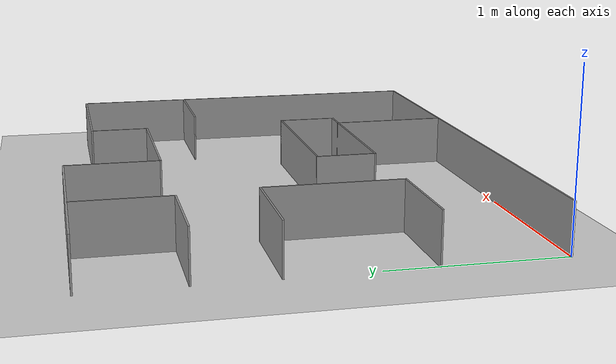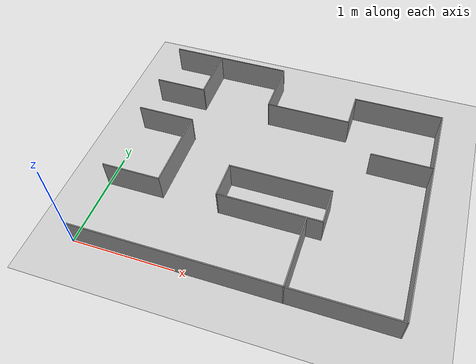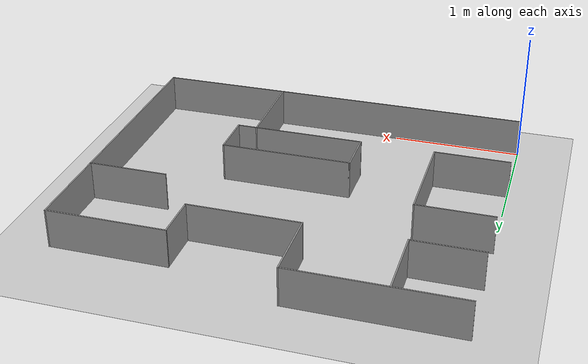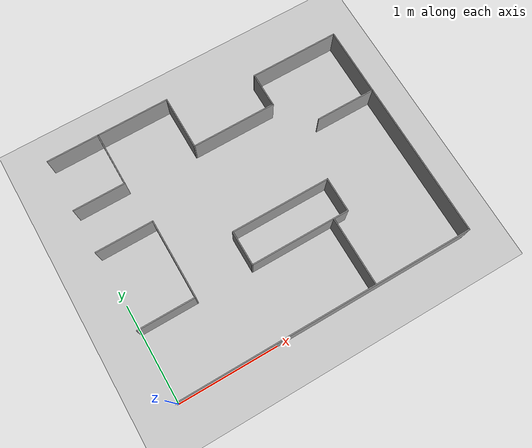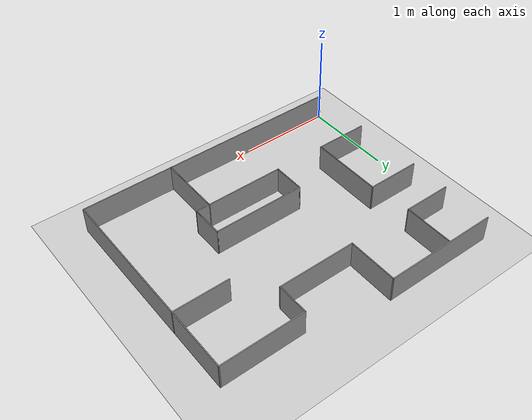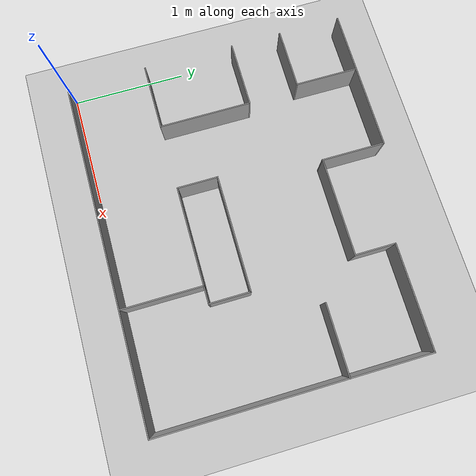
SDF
<sdf version="1.4">
  <world name="default">

    <scene>
      <ambient>0.4 0.4 0.4 1</ambient>
      <background>0.7 0.7 0.7 1</background>
      <shadows>true</shadows>
    </scene>

    <!-- A global light source -->
    <include>
      <uri>model://sun</uri>
    </include>

    <!-- A ground plane -->
    <include>
      <uri>model://ground_plane</uri>
    </include>

    <include>
      <uri>model://turtlebot3_maze4</uri>
    </include>

    <physics type="ode">
      <real_time_update_rate>1000.0</real_time_update_rate>
      <max_step_size>0.001</max_step_size>
      <real_time_factor>1</real_time_factor>
      <ode>
        <solver>
          <type>quick</type>
          <iters>150</iters>
          <precon_iters>0</precon_iters>
          <sor>1.400000</sor>
          <use_dynamic_moi_rescaling>1</use_dynamic_moi_rescaling>
        </solver>
        <constraints>
          <cfm>0.00001</cfm>
          <erp>0.2</erp>
          <contact_max_correcting_vel>2000.000000</contact_max_correcting_vel>
          <contact_surface_layer>0.01000</contact_surface_layer>
        </constraints>
      </ode>
    </physics>
  </world>

</sdf>

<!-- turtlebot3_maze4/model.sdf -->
<sdf version='1.7'>
  <model name='Maze4'>
    <pose>1.5 1.25 0 0 -0 0</pose>
    <link name='Wall_0'>
      <collision name='Wall_0_Collision'>
        <geometry>
          <box>
            <size>3.01 0.01 0.3</size>
          </box>
        </geometry>
        <pose>0 0 0.15 0 -0 0</pose>
      </collision>
      <visual name='Wall_0_Visual'>
        <pose>0 0 0.15 0 -0 0</pose>
        <geometry>
          <box>
            <size>3.01 0.01 0.3</size>
          </box>
        </geometry>
        <material>
          <script>
            <uri>file://media/materials/scripts/gazebo.material</uri>
            <name>Gazebo/Grey</name>
          </script>
          <ambient>1 1 1 1</ambient>
        </material>
        <meta>
          <layer>0</layer>
        </meta>
      </visual>
      <pose>-0 -1.25 0 0 -0 0</pose>
    </link>
    <link name='Wall_10'>
      <collision name='Wall_10_Collision'>
        <geometry>
          <box>
            <size>2.31 0.01 0.3</size>
          </box>
        </geometry>
        <pose>0 0 0.15 0 -0 0</pose>
      </collision>
      <visual name='Wall_10_Visual'>
        <pose>0 0 0.15 0 -0 0</pose>
        <geometry>
          <box>
            <size>2.31 0.01 0.3</size>
          </box>
        </geometry>
        <material>
          <script>
            <uri>file://media/materials/scripts/gazebo.material</uri>
            <name>Gazebo/Grey</name>
          </script>
          <ambient>1 1 1 1</ambient>
        </material>
        <meta>
          <layer>0</layer>
        </meta>
      </visual>
      <pose>1.5 -0.1 0 0 -0 1.5708</pose>
    </link>
    <link name='Wall_11'>
      <collision name='Wall_11_Collision'>
        <geometry>
          <box>
            <size>0.91 0.01 0.3</size>
          </box>
        </geometry>
        <pose>0 0 0.15 0 -0 0</pose>
      </collision>
      <visual name='Wall_11_Visual'>
        <pose>0 0 0.15 0 -0 0</pose>
        <geometry>
          <box>
            <size>0.91 0.01 0.3</size>
          </box>
        </geometry>
        <material>
          <script>
            <uri>file://media/materials/scripts/gazebo.material</uri>
            <name>Gazebo/Grey</name>
          </script>
          <ambient>1 1 1 1</ambient>
        </material>
        <meta>
          <layer>0</layer>
        </meta>
      </visual>
      <pose>1.05 1.05 0 0 -0 3.14159</pose>
    </link>
    <link name='Wall_13'>
      <collision name='Wall_13_Collision'>
        <geometry>
          <box>
            <size>0.61 0.01 0.3</size>
          </box>
        </geometry>
        <pose>0 0 0.15 0 -0 0</pose>
      </collision>
      <visual name='Wall_13_Visual'>
        <pose>0 0 0.15 0 -0 0</pose>
        <geometry>
          <box>
            <size>0.61 0.01 0.3</size>
          </box>
        </geometry>
        <material>
          <script>
            <uri>file://media/materials/scripts/gazebo.material</uri>
            <name>Gazebo/Grey</name>
          </script>
          <ambient>1 1 1 1</ambient>
        </material>
        <meta>
          <layer>0</layer>
        </meta>
      </visual>
      <pose>1.2 0.35 0 0 -0 3.14159</pose>
    </link>
    <link name='Wall_15'>
      <collision name='Wall_15_Collision'>
        <geometry>
          <box>
            <size>0.36 0.01 0.3</size>
          </box>
        </geometry>
        <pose>0 0 0.15 0 -0 0</pose>
      </collision>
      <visual name='Wall_15_Visual'>
        <pose>0 0 0.15 0 -0 0</pose>
        <geometry>
          <box>
            <size>0.36 0.01 0.3</size>
          </box>
        </geometry>
        <material>
          <script>
            <uri>file://media/materials/scripts/gazebo.material</uri>
            <name>Gazebo/Grey</name>
          </script>
          <ambient>1 1 1 1</ambient>
        </material>
        <meta>
          <layer>0</layer>
        </meta>
      </visual>
      <pose>0.6 0.875 0 0 -0 -1.5708</pose>
    </link>
    <link name='Wall_16'>
      <collision name='Wall_16_Collision'>
        <geometry>
          <box>
            <size>0.86 0.01 0.3</size>
          </box>
        </geometry>
        <pose>0 0 0.15 0 -0 0</pose>
      </collision>
      <visual name='Wall_16_Visual'>
        <pose>0 0 0.15 0 -0 0</pose>
        <geometry>
          <box>
            <size>0.86 0.01 0.3</size>
          </box>
        </geometry>
        <material>
          <script>
            <uri>file://media/materials/scripts/gazebo.material</uri>
            <name>Gazebo/Grey</name>
          </script>
          <ambient>1 1 1 1</ambient>
        </material>
        <meta>
          <layer>0</layer>
        </meta>
      </visual>
      <pose>0.175 0.7 0 0 -0 3.14159</pose>
    </link>
    <link name='Wall_17'>
      <collision name='Wall_17_Collision'>
        <geometry>
          <box>
            <size>0.56 0.01 0.3</size>
          </box>
        </geometry>
        <pose>0 0 0.15 0 -0 0</pose>
      </collision>
      <visual name='Wall_17_Visual'>
        <pose>0 0 0.15 0 -0 0</pose>
        <geometry>
          <box>
            <size>0.56 0.01 0.3</size>
          </box>
        </geometry>
        <material>
          <script>
            <uri>file://media/materials/scripts/gazebo.material</uri>
            <name>Gazebo/Grey</name>
          </script>
          <ambient>1 1 1 1</ambient>
        </material>
        <meta>
          <layer>0</layer>
        </meta>
      </visual>
      <pose>-0.25 0.975 0 0 -0 1.5708</pose>
    </link>
    <link name='Wall_18'>
      <collision name='Wall_18_Collision'>
        <geometry>
          <box>
            <size>1.26 0.01 0.3</size>
          </box>
        </geometry>
        <pose>0 0 0.15 0 -0 0</pose>
      </collision>
      <visual name='Wall_18_Visual'>
        <pose>0 0 0.15 0 -0 0</pose>
        <geometry>
          <box>
            <size>1.26 0.01 0.3</size>
          </box>
        </geometry>
        <material>
          <script>
            <uri>file://media/materials/scripts/gazebo.material</uri>
            <name>Gazebo/Grey</name>
          </script>
          <ambient>1 1 1 1</ambient>
        </material>
        <meta>
          <layer>0</layer>
        </meta>
      </visual>
      <pose>-0.875 1.25 0 0 -0 3.14159</pose>
    </link>
    <link name='Wall_2'>
      <collision name='Wall_2_Collision'>
        <geometry>
          <box>
            <size>0.71 0.01 0.3</size>
          </box>
        </geometry>
        <pose>0 0 0.15 0 -0 0</pose>
      </collision>
      <visual name='Wall_2_Visual'>
        <pose>0 0 0.15 0 -0 0</pose>
        <geometry>
          <box>
            <size>0.71 0.01 0.3</size>
          </box>
        </geometry>
        <material>
          <script>
            <uri>file://media/materials/scripts/gazebo.material</uri>
            <name>Gazebo/Grey</name>
          </script>
          <ambient>1 1 1 1</ambient>
        </material>
        <meta>
          <layer>0</layer>
        </meta>
      </visual>
      <pose>0.5 -0.9 0 0 -0 1.5708</pose>
    </link>
    <link name='Wall_20'>
      <collision name='Wall_20_Collision'>
        <geometry>
          <box>
            <size>0.56 0.01 0.3</size>
          </box>
        </geometry>
        <pose>0 0 0.15 0 -0 0</pose>
      </collision>
      <visual name='Wall_20_Visual'>
        <pose>0 0 0.15 0 -0 0</pose>
        <geometry>
          <box>
            <size>0.56 0.01 0.3</size>
          </box>
        </geometry>
        <material>
          <script>
            <uri>file://media/materials/scripts/gazebo.material</uri>
            <name>Gazebo/Grey</name>
          </script>
          <ambient>1 1 1 1</ambient>
        </material>
        <meta>
          <layer>0</layer>
        </meta>
      </visual>
      <pose>-0.98 0.975 0 0 -0 -1.5708</pose>
    </link>
    <link name='Wall_21'>
      <collision name='Wall_21_Collision'>
        <geometry>
          <box>
            <size>0.53 0.01 0.3</size>
          </box>
        </geometry>
        <pose>0 0 0.15 0 -0 0</pose>
      </collision>
      <visual name='Wall_21_Visual'>
        <pose>0 0 0.15 0 -0 0</pose>
        <geometry>
          <box>
            <size>0.53 0.01 0.3</size>
          </box>
        </geometry>
        <material>
          <script>
            <uri>file://media/materials/scripts/gazebo.material</uri>
            <name>Gazebo/Grey</name>
          </script>
          <ambient>1 1 1 1</ambient>
        </material>
        <meta>
          <layer>0</layer>
        </meta>
      </visual>
      <pose>-1.24 0.7 0 0 -0 3.14159</pose>
    </link>
    <link name='Wall_23'>
      <collision name='Wall_23_Collision'>
        <geometry>
          <box>
            <size>0.585 0.01 0.3</size>
          </box>
        </geometry>
        <pose>0 0 0.15 0 -0 0</pose>
      </collision>
      <visual name='Wall_23_Visual'>
        <pose>0 0 0.15 0 -0 0</pose>
        <geometry>
          <box>
            <size>0.585 0.01 0.3</size>
          </box>
        </geometry>
        <material>
          <script>
            <uri>file://media/materials/scripts/gazebo.material</uri>
            <name>Gazebo/Grey</name>
          </script>
          <ambient>1 1 1 1</ambient>
        </material>
        <meta>
          <layer>0</layer>
        </meta>
      </visual>
      <pose>-1.2125 -0.55 0 0 -0 0</pose>
    </link>
    <link name='Wall_24'>
      <collision name='Wall_24_Collision'>
        <geometry>
          <box>
            <size>0.81 0.01 0.3</size>
          </box>
        </geometry>
        <pose>0 0 0.15 0 -0 0</pose>
      </collision>
      <visual name='Wall_24_Visual'>
        <pose>0 0 0.15 0 -0 0</pose>
        <geometry>
          <box>
            <size>0.81 0.01 0.3</size>
          </box>
        </geometry>
        <material>
          <script>
            <uri>file://media/materials/scripts/gazebo.material</uri>
            <name>Gazebo/Grey</name>
          </script>
          <ambient>1 1 1 1</ambient>
        </material>
        <meta>
          <layer>0</layer>
        </meta>
      </visual>
      <pose>-0.925 -0.15 0 0 -0 1.5708</pose>
    </link>
    <link name='Wall_25'>
      <collision name='Wall_25_Collision'>
        <geometry>
          <box>
            <size>0.585 0.01 0.3</size>
          </box>
        </geometry>
        <pose>0 0 0.15 0 -0 0</pose>
      </collision>
      <visual name='Wall_25_Visual'>
        <pose>0 0 0.15 0 -0 0</pose>
        <geometry>
          <box>
            <size>0.585 0.01 0.3</size>
          </box>
        </geometry>
        <material>
          <script>
            <uri>file://media/materials/scripts/gazebo.material</uri>
            <name>Gazebo/Grey</name>
          </script>
          <ambient>1 1 1 1</ambient>
        </material>
        <meta>
          <layer>0</layer>
        </meta>
      </visual>
      <pose>-1.2125 0.25 0 0 -0 3.14159</pose>
    </link>
    <link name='Wall_4'>
      <collision name='Wall_4_Collision'>
        <geometry>
          <box>
            <size>1.01 0.01 0.3</size>
          </box>
        </geometry>
        <pose>0 0 0.15 0 -0 0</pose>
      </collision>
      <visual name='Wall_4_Visual'>
        <pose>0 0 0.15 0 -0 0</pose>
        <geometry>
          <box>
            <size>1.01 0.01 0.3</size>
          </box>
        </geometry>
        <material>
          <script>
            <uri>file://media/materials/scripts/gazebo.material</uri>
            <name>Gazebo/Grey</name>
          </script>
          <ambient>1 1 1 1</ambient>
        </material>
        <meta>
          <layer>0</layer>
        </meta>
      </visual>
      <pose>0.15 -0.55 0 0 -0 3.14159</pose>
    </link>
    <link name='Wall_6'>
      <collision name='Wall_6_Collision'>
        <geometry>
          <box>
            <size>0.36 0.01 0.3</size>
          </box>
        </geometry>
        <pose>0 0 0.15 0 -0 0</pose>
      </collision>
      <visual name='Wall_6_Visual'>
        <pose>0 0 0.15 0 -0 0</pose>
        <geometry>
          <box>
            <size>0.36 0.01 0.3</size>
          </box>
        </geometry>
        <material>
          <script>
            <uri>file://media/materials/scripts/gazebo.material</uri>
            <name>Gazebo/Grey</name>
          </script>
          <ambient>1 1 1 1</ambient>
        </material>
        <meta>
          <layer>0</layer>
        </meta>
      </visual>
      <pose>-0.35 -0.375 0 0 -0 1.5708</pose>
    </link>
    <link name='Wall_7'>
      <collision name='Wall_7_Collision'>
        <geometry>
          <box>
            <size>1.01 0.01 0.3</size>
          </box>
        </geometry>
        <pose>0 0 0.15 0 -0 0</pose>
      </collision>
      <visual name='Wall_7_Visual'>
        <pose>0 0 0.15 0 -0 0</pose>
        <geometry>
          <box>
            <size>1.01 0.01 0.3</size>
          </box>
        </geometry>
        <material>
          <script>
            <uri>file://media/materials/scripts/gazebo.material</uri>
            <name>Gazebo/Grey</name>
          </script>
          <ambient>1 1 1 1</ambient>
        </material>
        <meta>
          <layer>0</layer>
        </meta>
      </visual>
      <pose>0.15 -0.2 0 0 -0 0</pose>
    </link>
    <link name='Wall_8'>
      <collision name='Wall_8_Collision'>
        <geometry>
          <box>
            <size>0.36 0.01 0.3</size>
          </box>
        </geometry>
        <pose>0 0 0.15 0 -0 0</pose>
      </collision>
      <visual name='Wall_8_Visual'>
        <pose>0 0 0.15 0 -0 0</pose>
        <geometry>
          <box>
            <size>0.36 0.01 0.3</size>
          </box>
        </geometry>
        <material>
          <script>
            <uri>file://media/materials/scripts/gazebo.material</uri>
            <name>Gazebo/Grey</name>
          </script>
          <ambient>1 1 1 1</ambient>
        </material>
        <meta>
          <layer>0</layer>
        </meta>
      </visual>
      <pose>0.65 -0.375 0 0 -0 -1.5708</pose>
    </link>
    <static>1</static>
  </model>
</sdf>
